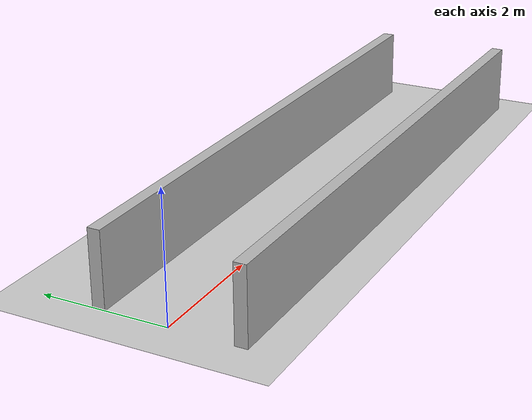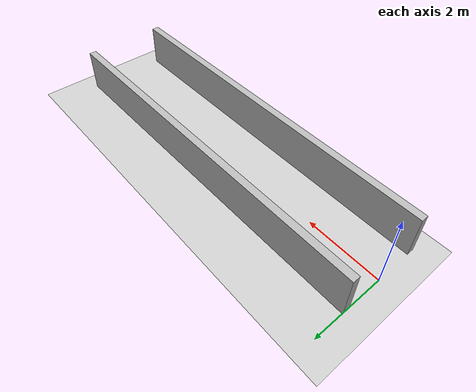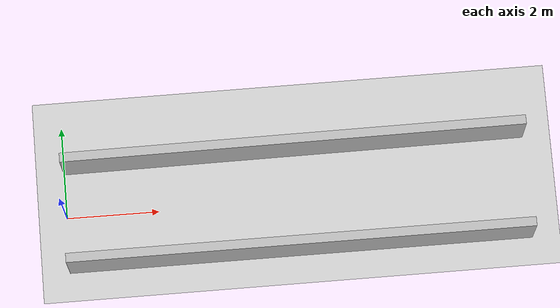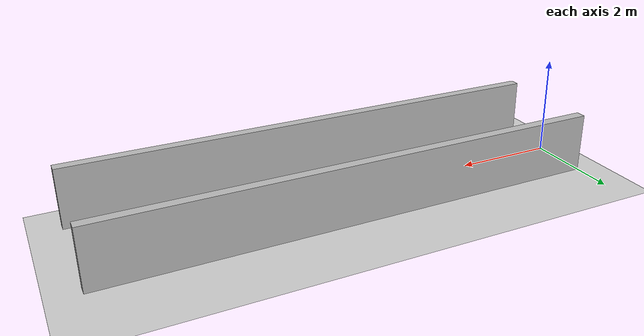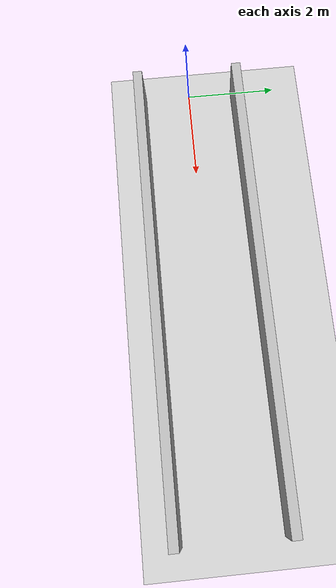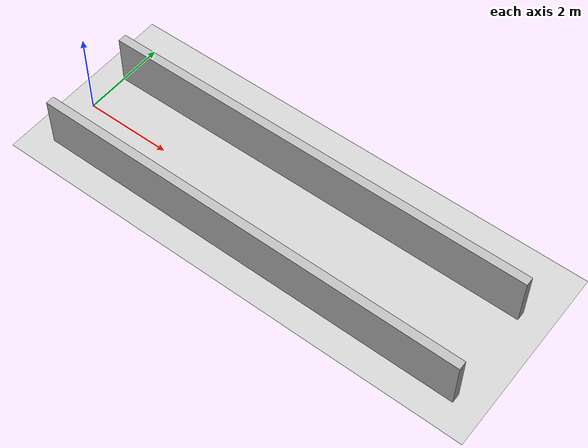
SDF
<?xml version="1.0"?>
<sdf version="1.6">
  <world name="v2-04g-r5-readiness-compile-support-corridor-s5116">
    <gravity>0 0 -9.81</gravity>
    <physics name="v2_deterministic" type="ode">
      <max_step_size>0.002</max_step_size>
      <real_time_update_rate>500</real_time_update_rate>
    </physics>
    <include>
      <uri>model://sun</uri>
    </include>
    <include>
      <uri>model://ground_plane</uri>
    </include>
    <model name="corridor-left">
      <static>true</static>
      <pose>4.989596731 1.100307910 0.600000000 0 0 0.003336468</pose>
      <link name="link">
        <collision name="collision">
          <geometry>
            <box>
              <size>10.000000 0.200000 1.200000</size>
            </box>
          </geometry>
        </collision>
        <visual name="visual">
          <geometry>
            <box>
              <size>10.000000 0.200000 1.200000</size>
            </box>
          </geometry>
        </visual>
      </link>
    </model>
    <model name="corridor-right">
      <static>true</static>
      <pose>4.991359730 -1.110942832 0.600000000 0 0 -0.001465003</pose>
      <link name="link">
        <collision name="collision">
          <geometry>
            <box>
              <size>10.000000 0.200000 1.200000</size>
            </box>
          </geometry>
        </collision>
        <visual name="visual">
          <geometry>
            <box>
              <size>10.000000 0.200000 1.200000</size>
            </box>
          </geometry>
        </visual>
      </link>
    </model>
  </world>
</sdf>
